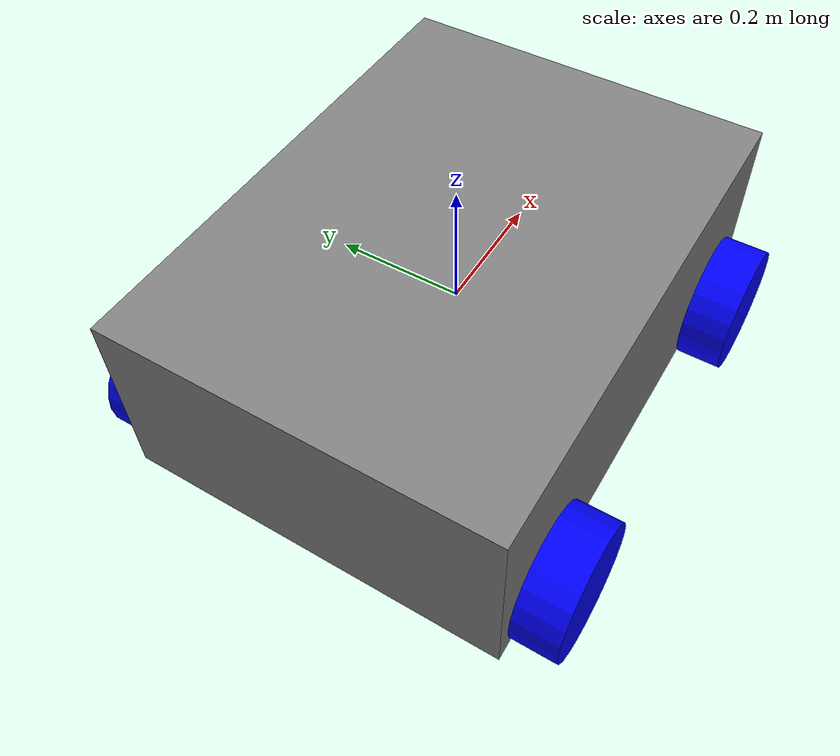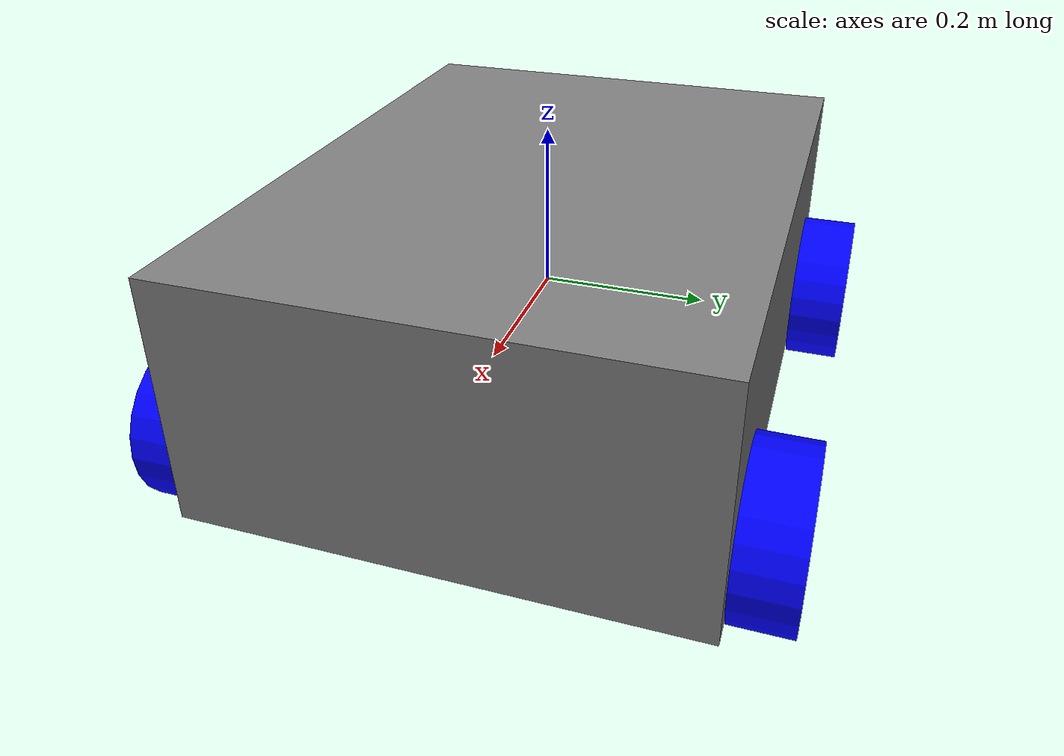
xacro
<?xml version="1.0"?>
<robot name="differential_drive_robot" xmlns:xacro="http://www.ros.org/wiki/xacro" >

    <!-- Material and colors -->
     <material name="blue">
        <color rgba="0 0 1 1"/>
     </material>

     <material name="grey">
        <color rgba="0.5 0.5 0.5 1"/>
     </material>

    <!--Body dimensions -->
    <xacro:property name="body_link_x_dim" value="0.8"/>
    <xacro:property name="body_link_y_dim" value="0.6"/>
    <xacro:property name="body_link_z_dim" value="0.3"/>

    <!-- Wheel dimensions -->
    <xacro:property name="wheel_link_radius" value="0.1"/>
    <xacro:property name="wheel_link_length" value="0.07"/>
    <xacro:property name="wheel_link_z_location" value="-0.1"/>

    <!-- Material density -->

    <xacro:property name="body_density" value="2710.0"/>
    <xacro:property name="wheel_density" value="2710.0"/>

    <!-- pi density -->
    <xacro:property name="pi_const" value="3.14"/>

    <!-- Robot body and wheel mass -->

    <xacro:property name="body_mass"
    value="${body_density*body_link_x_dim*body_link_y_dim*body_link_z_dim}"/>

    <xacro:property name="wheel_mass"
    value="${wheel_density*pi_const*wheel_link_radius*wheel_link_radius*wheel_link_length}"/>

    <!-- Moments of inertia of the wheel -->
    <xacro:property name="Iz_wheel"
    value="${0.5*wheel_mass*wheel_link_radius*wheel_link_radius}" />
    <xacro:property name="I_wheel"
    value="${(1.0/12.0)*wheel_mass*(3.0*wheel_link_radius*wheel_link_radius+wheel_link_length*wheel_link_length)}" />

    <!--This macro defines the complete inertial section of the wheel -->
    <!-- It is used later in the code -->

    <xacro:macro name="inertia_wheel">
        <inertial>
        <origin rpy="0 0 0" xyz="0 0 0"/>
        <mass value="${wheel_mass}"/>
        <inertia ixx="${I_wheel}" ixy="0.0" ixz="0.0" iyy="${I_wheel}" iyz="0" izz="${Iz_wheel}" />
        </inertial>
    </xacro:macro>

    <!--.gazebo file-->
    <xacro:include filename="$(find patrol_bot)/model/robot.gazebo" />

    <link name="base_footprint">
    </link>

    <!--base -->

    <joint name="base_joint" type="fixed">
        <parent link="base_footprint"/>
        <child link="body_link"/>
    </joint>
    <link name="body_link">
        <visual>
            <geometry>
                <box size="${body_link_x_dim} ${body_link_y_dim} ${body_link_z_dim}" />
            </geometry>
            <material name="grey" />
        <origin rpy="0 0 0" xyz="0 0 0"/>
        <!-- can add material for bot-->
        </visual>

        <collision>
            <geometry>
                <box size="${body_link_x_dim} ${body_link_y_dim} ${body_link_z_dim}" />
            </geometry>
        <origin rpy="0 0 0" xyz="0 0 0"/>
        <!-- copy pasted form visual-->
        </collision>

        <inertial>
            <origin rpy="0 0 0" xyz="0 0 0"/>
            <mass value="${body_mass}"/>
        <inertia
        ixx="${(1/12)*body_mass*(body_link_y_dim*body_link_y_dim+body_link_z_dim*body_link_z_dim)}"
        ixy="0" ixz="0" iyy="${(1/12)*body_mass*(body_link_x_dim*body_link_x_dim+body_link_z_dim*body_link_z_dim)}"
        iyz="0"
        izz="${(1/12)*body_mass*(body_link_y_dim*body_link_y_dim+body_link_x_dim*body_link_x_dim)}"/>
        </inertial>
    </link>

    <!--right back wheel-->

    <joint name="wheel1_joint" type="continuous">
        <parent link="body_link"/>
        <child link="wheel1_link" />
        <origin xyz="${-body_link_x_dim/2+1.2*wheel_link_radius} ${-body_link_y_dim/2-wheel_link_length/2} ${wheel_link_z_location}" rpy="0 0 0" />
        <axis xyz="0 1 0"/>
        <limit effort="1000" velocity="1000"/>
        <dynamics damping="1.0" friction="1.0"/>
    </joint>
    <link name="wheel1_link">
        <visual>
            <origin rpy="1.570795 0 0" xyz="0 0 0"/>
            <geometry>
                <cylinder length="${wheel_link_length}" radius="${wheel_link_radius}"/>
            </geometry>
            <material name="blue" />
        </visual>

        <collision>
            <origin rpy="1.570795 0 0" xyz="0 0 0"/>
            <geometry>
                <cylinder length="${wheel_link_length}" radius="${wheel_link_radius}"/>
            </geometry>
        </collision>
        <xacro:inertia_wheel />
    </link>

    <!--left back wheel-->

    <joint name="wheel2_joint" type="continuous" >
        <parent link="body_link"/>
        <child link="wheel2_link" />
        <origin xyz="${-body_link_x_dim/2+1.2*wheel_link_radius} ${body_link_y_dim/2+wheel_link_length/2} ${wheel_link_z_location}" rpy="0 0 0" />
        <axis xyz="0 1 0"/>
        <limit effort="1000" velocity="1000"/>
        <dynamics damping="1.0" friction="1.0"/>
    </joint>
    <link name="wheel2_link">
        <visual>
            <origin rpy="1.570795 0 0" xyz="0 0 0"/>
            <geometry>
                <cylinder length="${wheel_link_length}" radius="${wheel_link_radius}"/>
            </geometry>
            <material name="blue" />
        </visual>

        <collision>
            <origin rpy="1.570795 0 0" xyz="0 0 0"/>
            <geometry>
                <cylinder length="${wheel_link_length}" radius="${wheel_link_radius}"/>
            </geometry>
        </collision>
        <xacro:inertia_wheel />
    </link>

    <!--right front wheel-->

    <joint name="wheel3_joint" type="continuous" >
        <parent link="body_link"/>
        <child link="wheel3_link" />
        <origin xyz="${body_link_x_dim/2-1.2*wheel_link_radius} ${-body_link_y_dim/2-wheel_link_length/2} ${wheel_link_z_location}" />
        <axis xyz="0 1 0"/>
        <limit effort="1000" velocity="1000" />
        <dynamics damping="1.0" friction="1.0"/>
    </joint>
    <link name="wheel3_link">
        <visual>
            <origin rpy="1.570795 0 0" xyz="0 0 0"/>
            <geometry>
                <cylinder length="${wheel_link_length}" radius="${wheel_link_radius}"/>
            </geometry>
            <material name="blue" />
        </visual>

        <collision>
            <origin rpy="1.570795 0 0" xyz="0 0 0"/>
            <geometry>
                <cylinder length="${wheel_link_length}" radius="${wheel_link_radius}"/>
            </geometry>
        </collision>
        <xacro:inertia_wheel />
    </link>

    <!--left front wheel -->

    <joint name="wheel4_joint" type="continuous" >
        <parent link="body_link" />
        <child link="wheel4_link" />
        <origin xyz="${body_link_x_dim/2-1.2*wheel_link_radius} ${body_link_y_dim/2+wheel_link_length/2} ${wheel_link_z_location}" rpy="0 0 0" />
        <axis xyz="0 1 0"/>
        <limit effort="1000" velocity="1000"/>
        <dynamics damping="1.0" friction="1.0"/>
    </joint>
    <link name="wheel4_link">
        <visual>
            <origin rpy="1.570795 0 0" xyz="0 0 0"/>
            <geometry>
                <cylinder length="${wheel_link_length}" radius="${wheel_link_radius}"/>
            </geometry>
            <material name="blue" />
        </visual>
        <collision>
            <origin rpy="1.570795 0 0" xyz="0 0 0"/>
            <geometry>
                <cylinder length="${wheel_link_length}" radius="${wheel_link_radius}"/>
            </geometry>
        </collision>
    <xacro:inertia_wheel />
    </link>
</robot>
